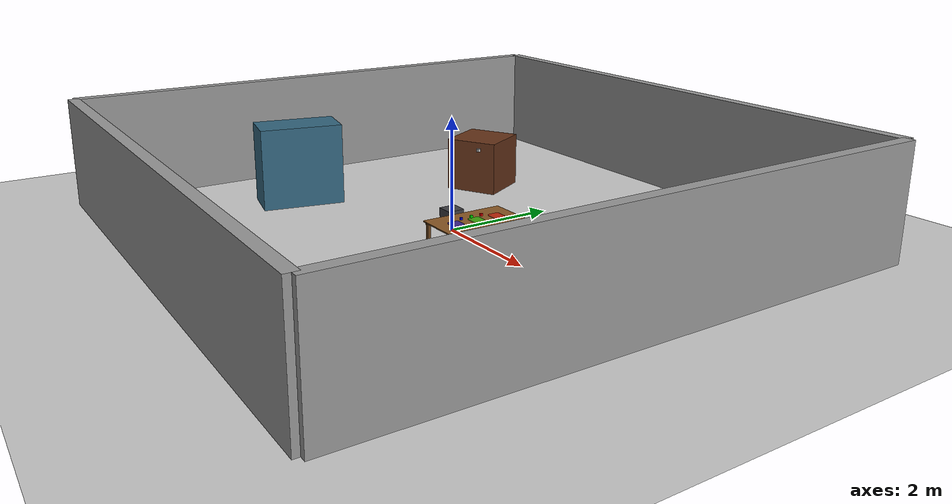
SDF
<?xml version="1.0" ?>
<sdf version="1.8">
  <world name="pick_and_place">
    <physics name="1ms" type="ignored">
      <max_step_size>0.001</max_step_size>
      <real_time_factor>1.0</real_time_factor>
    </physics>
    <plugin
      filename="gz-sim-physics-system"
      name="gz::sim::systems::Physics">
    </plugin>
    <plugin
      filename="gz-sim-user-commands-system"
      name="gz::sim::systems::UserCommands">
    </plugin>
    <plugin
      filename="gz-sim-scene-broadcaster-system"
      name="gz::sim::systems::SceneBroadcaster">
    </plugin>
    <plugin
      filename="gz-sim-sensors-system"
      name="gz::sim::systems::Sensors">
      <render_engine>ogre2</render_engine>
    </plugin>

    <light type="directional" name="sun">
      <cast_shadows>true</cast_shadows>
      <pose>0 0 10 0 0 0</pose>
      <diffuse>0.8 0.8 0.8 1</diffuse>
      <specular>0.2 0.2 0.2 1</specular>
      <attenuation>
        <range>1000</range>
        <constant>0.9</constant>
        <linear>0.01</linear>
        <quadratic>0.001</quadratic>
      </attenuation>
      <direction>-0.5 0.1 -0.9</direction>
    </light>

    <model name="ground_plane">
      <static>true</static>
      <link name="link">
        <collision name="collision">
          <geometry>
            <plane>
              <normal>0 0 1</normal>
              <size>100 100</size>
            </plane>
          </geometry>
        </collision>
        <visual name="visual">
          <geometry>
            <plane>
              <normal>0 0 1</normal>
              <size>100 100</size>
            </plane>
          </geometry>
          <material>
            <ambient>0.8 0.8 0.8 1</ambient>
            <diffuse>0.8 0.8 0.8 1</diffuse>
            <specular>0.8 0.8 0.8 1</specular>
          </material>
        </visual>
      </link>
    </model>

    <!-- Table -->
    <model name="table">
      <static>true</static>
      <!-- Table top surface center at z=0.39 → top at 0.40 m above ground -->
      <pose>0.8 0 0.39 0 0 0</pose>
      <link name="table_top">
        <collision name="collision">
          <geometry>
            <box>
              <size>1.0 1.5 0.02</size>
            </box>
          </geometry>
        </collision>
        <visual name="visual">
          <geometry>
            <box>
              <size>1.0 1.5 0.02</size>
            </box>
          </geometry>
          <material>
            <ambient>0.55 0.35 0.15 1</ambient>
            <diffuse>0.55 0.35 0.15 1</diffuse>
          </material>
        </visual>
      </link>
      <!-- Front-left leg -->
      <link name="leg_fl">
        <pose>0.45 0.68 -0.195 0 0 0</pose>
        <collision name="collision">
          <geometry><box><size>0.06 0.06 0.39</size></box></geometry>
        </collision>
        <visual name="visual">
          <geometry><box><size>0.06 0.06 0.39</size></box></geometry>
          <material><ambient>0.4 0.25 0.1 1</ambient><diffuse>0.4 0.25 0.1 1</diffuse></material>
        </visual>
      </link>
      <!-- Front-right leg -->
      <link name="leg_fr">
        <pose>0.45 -0.68 -0.195 0 0 0</pose>
        <collision name="collision">
          <geometry><box><size>0.06 0.06 0.39</size></box></geometry>
        </collision>
        <visual name="visual">
          <geometry><box><size>0.06 0.06 0.39</size></box></geometry>
          <material><ambient>0.4 0.25 0.1 1</ambient><diffuse>0.4 0.25 0.1 1</diffuse></material>
        </visual>
      </link>
      <!-- Back-left leg -->
      <link name="leg_bl">
        <pose>-0.45 0.68 -0.195 0 0 0</pose>
        <collision name="collision">
          <geometry><box><size>0.06 0.06 0.39</size></box></geometry>
        </collision>
        <visual name="visual">
          <geometry><box><size>0.06 0.06 0.39</size></box></geometry>
          <material><ambient>0.4 0.25 0.1 1</ambient><diffuse>0.4 0.25 0.1 1</diffuse></material>
        </visual>
      </link>
      <!-- Back-right leg -->
      <link name="leg_br">
        <pose>-0.45 -0.68 -0.195 0 0 0</pose>
        <collision name="collision">
          <geometry><box><size>0.06 0.06 0.39</size></box></geometry>
        </collision>
        <visual name="visual">
          <geometry><box><size>0.06 0.06 0.39</size></box></geometry>
          <material><ambient>0.4 0.25 0.1 1</ambient><diffuse>0.4 0.25 0.1 1</diffuse></material>
        </visual>
      </link>
    </model>

    <!-- Cubes -->
    <model name="red_cube">
      <!-- Resting on table top: 0.40 + 0.02 (half cube height) = 0.42 -->
      <pose>0.6 0.2 0.42 0 0 0</pose>
      <link name="link">
        <inertial>
          <mass>0.1</mass>
          <inertia>
            <ixx>0.0001</ixx><ixy>0</ixy><ixz>0</ixz>
            <iyy>0.0001</iyy><iyz>0</iyz>
            <izz>0.0001</izz>
          </inertia>
        </inertial>
        <collision name="collision">
          <geometry>
            <box><size>0.04 0.04 0.04</size></box>
          </geometry>
        </collision>
        <visual name="visual">
          <geometry>
            <box><size>0.04 0.04 0.04</size></box>
          </geometry>
          <material>
            <ambient>1 0 0 1</ambient>
            <diffuse>1 0 0 1</diffuse>
          </material>
        </visual>
      </link>
    </model>

    <model name="green_cube">
      <pose>0.6 0.0 0.42 0 0 0</pose>
      <link name="link">
        <inertial>
          <mass>0.1</mass>
          <inertia>
            <ixx>0.0001</ixx><ixy>0</ixy><ixz>0</ixz>
            <iyy>0.0001</iyy><iyz>0</iyz>
            <izz>0.0001</izz>
          </inertia>
        </inertial>
        <collision name="collision">
          <geometry>
            <box><size>0.04 0.04 0.04</size></box>
          </geometry>
        </collision>
        <visual name="visual">
          <geometry>
            <box><size>0.04 0.04 0.04</size></box>
          </geometry>
          <material>
            <ambient>0 1 0 1</ambient>
            <diffuse>0 1 0 1</diffuse>
          </material>
        </visual>
      </link>
    </model>

    <model name="blue_cube">
      <pose>0.6 -0.2 0.42 0 0 0</pose>
      <link name="link">
        <inertial>
          <mass>0.1</mass>
          <inertia>
            <ixx>0.0001</ixx><ixy>0</ixy><ixz>0</ixz>
            <iyy>0.0001</iyy><iyz>0</iyz>
            <izz>0.0001</izz>
          </inertia>
        </inertial>
        <collision name="collision">
          <geometry>
            <box><size>0.04 0.04 0.04</size></box>
          </geometry>
        </collision>
        <visual name="visual">
          <geometry>
            <box><size>0.04 0.04 0.04</size></box>
          </geometry>
          <material>
            <ambient>0 0 1 1</ambient>
            <diffuse>0 0 1 1</diffuse>
          </material>
        </visual>
      </link>
    </model>

    <!-- Bins: raised to sit on table top at 0.40 m -->
    <model name="red_bin">
      <static>true</static>
      <!-- bin center z = 0.40 + 0.01 (half of 0.02 thickness) = 0.41 -->
      <pose>0.75 0.4 0.41 0 0 0</pose>
      <link name="link">
        <collision name="collision">
          <geometry>
            <box><size>0.2 0.2 0.02</size></box>
          </geometry>
        </collision>
        <visual name="visual">
          <geometry>
            <box><size>0.2 0.2 0.02</size></box>
          </geometry>
          <material>
            <ambient>1 0 0 0.5</ambient>
            <diffuse>1 0 0 0.5</diffuse>
          </material>
        </visual>
      </link>
    </model>

    <model name="green_bin">
      <static>true</static>
      <pose>0.75 0.0 0.41 0 0 0</pose>
      <link name="link">
        <collision name="collision">
          <geometry>
            <box><size>0.2 0.2 0.02</size></box>
          </geometry>
        </collision>
        <visual name="visual">
          <geometry>
            <box><size>0.2 0.2 0.02</size></box>
          </geometry>
          <material>
            <ambient>0 1 0 0.5</ambient>
            <diffuse>0 1 0 0.5</diffuse>
          </material>
        </visual>
      </link>
    </model>

    <model name="blue_bin">
      <static>true</static>
      <pose>0.75 -0.4 0.41 0 0 0</pose>
      <link name="link">
        <collision name="collision">
          <geometry>
            <box><size>0.2 0.2 0.02</size></box>
          </geometry>
        </collision>
        <visual name="visual">
          <geometry>
            <box><size>0.2 0.2 0.02</size></box>
          </geometry>
          <material>
            <ambient>0 0 1 0.5</ambient>
            <diffuse>0 0 1 0.5</diffuse>
          </material>
        </visual>
      </link>
    </model>

    <!-- Robot Base Pedestal: solid box from z=0 to z=0.40 m, centered at robot spawn (0,0) -->
    <model name="robot_base_pedestal">
      <static>true</static>
      <!-- center at z=0.20 so top face is at 0.40 m -->
      <pose>0 0 0.2 0 0 0</pose>
      <link name="link">
        <visual name="visual">
          <geometry>
            <box><size>0.3 0.3 0.4</size></box>
          </geometry>
          <material>
            <ambient>0.25 0.25 0.27 1</ambient>
            <diffuse>0.25 0.25 0.27 1</diffuse>
            <specular>0.4 0.4 0.4 1</specular>
          </material>
        </visual>
      </link>
    </model>

    <!-- Overhead Camera -->
    <model name="overhead_camera">
      <static>true</static>
      <!-- Raised by 0.40 m to maintain same relative height above table -->
      <pose>0.8 0 1.6 0 1.5708 0</pose>
      <link name="link">
        <sensor name="overhead_camera" type="rgbd">
          <camera>
            <horizontal_fov>1.047</horizontal_fov>
            <image>
              <width>640</width>
              <height>480</height>
            </image>
            <clip>
              <near>0.1</near>
              <far>100</far>
            </clip>
          </camera>
          <always_on>1</always_on>
          <update_rate>10</update_rate>
          <visualize>true</visualize>
          <topic>overhead_camera</topic>
          <gz_frame_id>overhead_camera_link</gz_frame_id>
        </sensor>
        <visual name="visual">
          <geometry><box><size>0.05 0.05 0.05</size></box></geometry>
        </visual>
      </link>
    </model>

    <!-- Walls for LiDAR and Map Generation -->
    <model name="wall_north">
      <static>true</static>
      <pose>5 0 1 0 0 0</pose>
      <link name="link">
        <collision name="collision">
          <geometry><box><size>0.2 10 2</size></box></geometry>
        </collision>
        <visual name="visual">
          <geometry><box><size>0.2 10 2</size></box></geometry>
          <material><ambient>0.6 0.6 0.6 1</ambient></material>
        </visual>
      </link>
    </model>

    <model name="wall_south">
      <static>true</static>
      <pose>-5 0 1 0 0 0</pose>
      <link name="link">
        <collision name="collision">
          <geometry><box><size>0.2 10 2</size></box></geometry>
        </collision>
        <visual name="visual">
          <geometry><box><size>0.2 10 2</size></box></geometry>
          <material><ambient>0.6 0.6 0.6 1</ambient></material>
        </visual>
      </link>
    </model>

    <model name="wall_east">
      <static>true</static>
      <pose>0 5 1 0 0 0</pose>
      <link name="link">
        <collision name="collision">
          <geometry><box><size>10 0.2 2</size></box></geometry>
        </collision>
        <visual name="visual">
          <geometry><box><size>10 0.2 2</size></box></geometry>
          <material><ambient>0.6 0.6 0.6 1</ambient></material>
        </visual>
      </link>
    </model>

    <model name="wall_west">
      <static>true</static>
      <pose>0 -5 1 0 0 0</pose>
      <link name="link">
        <collision name="collision">
          <geometry><box><size>10 0.2 2</size></box></geometry>
        </collision>
        <visual name="visual">
          <geometry><box><size>10 0.2 2</size></box></geometry>
          <material><ambient>0.6 0.6 0.6 1</ambient></material>
        </visual>
      </link>
    </model>

    <!-- Static Obstacles for feature tracking (Visual SLAM) -->
    <model name="warehouse_box_1">
      <static>true</static>
      <pose>-2 2 0.5 0 0 0.5</pose>
      <link name="link">
        <collision name="collision">
          <geometry><box><size>1 1 1</size></box></geometry>
        </collision>
        <visual name="visual">
          <geometry><box><size>1 1 1</size></box></geometry>
          <material><ambient>0.4 0.2 0.1 1</ambient></material>
        </visual>
      </link>
    </model>

    <model name="warehouse_box_2">
      <static>true</static>
      <pose>-3 -1.5 0.75 0 0 -0.2</pose>
      <link name="link">
        <collision name="collision">
          <geometry><box><size>0.8 1.5 1.5</size></box></geometry>
        </collision>
        <visual name="visual">
          <geometry><box><size>0.8 1.5 1.5</size></box></geometry>
          <material><ambient>0.2 0.4 0.5 1</ambient></material>
        </visual>
      </link>
    </model>

  </world>
</sdf>
